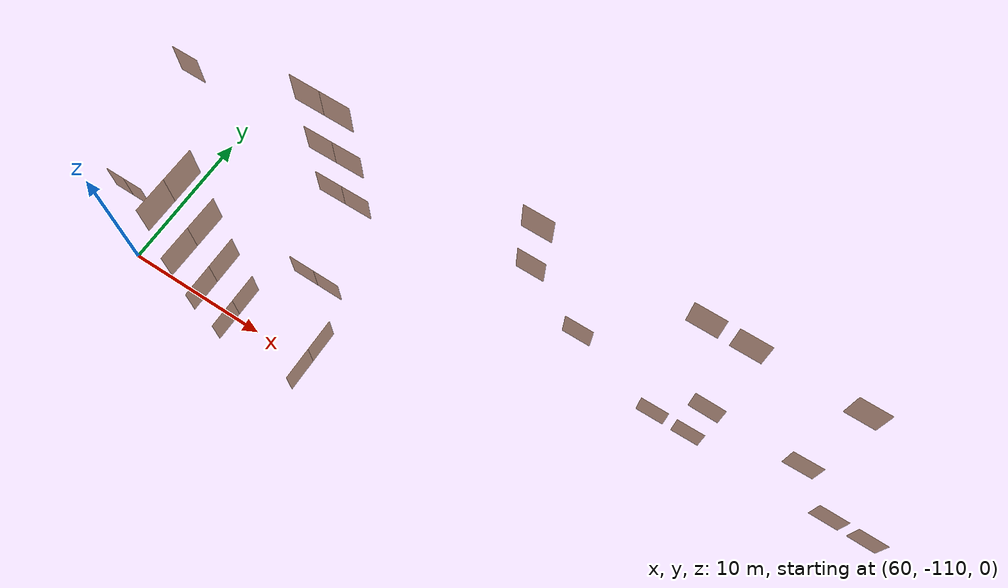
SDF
<sdf version="1.7">
 <world name="sim_world">
  <model name="puerta28">
   <pose>56.73398961875783 -106.65507427957759 0.0 0 0 0.005687130982802125</pose>
   <link name="right">
    <pose>0.7380287599410226 0 1.11 0 0 0</pose>
    <visual name="right_visual">
     <geometry><box><size>1.4660575198820451 0.03 2.2</size></box></geometry>
     <material>
      <ambient>0.5 0.25 0 0.6</ambient>
      <diffuse>0.5 0.25 0 0.6</diffuse>
      <pbr><metal><metalness>0.0</metalness></metal></pbr>
     </material>
    </visual>
    <collision name="right_collision">
     <geometry><box><size>1.4660575198820451 0.03 2.2</size></box></geometry>
     <surface><contact><collide_bitmask>0x02</collide_bitmask></contact></surface>
    </collision>
    <inertial>
     <mass>50.0</mass>
     <inertia><ixx>20.17041666666667</ixx><iyy>29.12218604834456</iyy><izz>8.95926938167789</izz></inertia>
    </inertial>
   </link>
   <joint name="right_joint" type="revolute">
    <parent>world</parent>
    <child>right</child>
    <axis><xyz>0 0 -1</xyz><limit><lower>0</lower><upper>1.57</upper></limit></axis>
    <pose>0.7380287599410226 0 0 0 0 0</pose>
   </joint>
   <link name="left">
    <pose>-0.7380287599410226 0 1.11 0 0 0</pose>
    <visual name="left_visual">
     <geometry><box><size>1.4660575198820451 0.03 2.2</size></box></geometry>
     <material>
      <ambient>0.5 0.25 0 0.6</ambient>
      <diffuse>0.5 0.25 0 0.6</diffuse>
      <pbr><metal><metalness>0.0</metalness></metal></pbr>
     </material>
    </visual>
    <collision name="left_collision">
     <geometry><box><size>1.4660575198820451 0.03 2.2</size></box></geometry>
     <surface><contact><collide_bitmask>0x02</collide_bitmask></contact></surface>
    </collision>
    <inertial>
     <mass>50.0</mass>
     <inertia><ixx>20.17041666666667</ixx><iyy>29.12218604834456</iyy><izz>8.95926938167789</izz></inertia>
    </inertial>
   </link>
   <joint name="left_joint" type="revolute">
    <parent>world</parent>
    <child>left</child>
    <axis><xyz>0 0 -1</xyz><limit><lower>-1.57</lower><upper>0</upper></limit></axis>
    <pose>-0.7380287599410226 0 0 0 0 0</pose>
   </joint>
   <plugin name="register_component" filename="libregister_component.so">
    <component name="Door">
     <v_max_door>0.5</v_max_door>
     <a_max_door>0.3</a_max_door>
     <a_nom_door>0.15</a_nom_door>
     <dx_min_door>0.01</dx_min_door>
     <f_max_door>500.0</f_max_door>
     <ros_interface>true</ros_interface>
     <door name="puerta28" type="DoubleSwingDoor" left_joint_name="left_joint" right_joint_name="right_joint"/>
    </component>
   </plugin>
  </model>
  <model name="puerta29">
   <pose>71.28122427062824 -105.17021657419008 0.0 0 0 3.1373496344820606</pose>
   <link name="right">
    <pose>0.9617949472866288 0 1.11 0 0 0</pose>
    <visual name="right_visual">
     <geometry><box><size>1.9135898945732577 0.03 2.2</size></box></geometry>
     <material>
      <ambient>0.5 0.25 0 0.6</ambient>
      <diffuse>0.5 0.25 0 0.6</diffuse>
      <pbr><metal><metalness>0.0</metalness></metal></pbr>
     </material>
    </visual>
    <collision name="right_collision">
     <geometry><box><size>1.9135898945732577 0.03 2.2</size></box></geometry>
     <surface><contact><collide_bitmask>0x02</collide_bitmask></contact></surface>
    </collision>
    <inertial>
     <mass>50.0</mass>
     <inertia><ixx>20.17041666666667</ixx><iyy>35.42427618588705</iyy><izz>15.261359519220383</izz></inertia>
    </inertial>
   </link>
   <joint name="right_joint" type="revolute">
    <parent>world</parent>
    <child>right</child>
    <axis><xyz>0 0 -1</xyz><limit><lower>0</lower><upper>1.57</upper></limit></axis>
    <pose>0.9617949472866288 0 0 0 0 0</pose>
   </joint>
   <link name="left">
    <pose>-0.9617949472866288 0 1.11 0 0 0</pose>
    <visual name="left_visual">
     <geometry><box><size>1.9135898945732577 0.03 2.2</size></box></geometry>
     <material>
      <ambient>0.5 0.25 0 0.6</ambient>
      <diffuse>0.5 0.25 0 0.6</diffuse>
      <pbr><metal><metalness>0.0</metalness></metal></pbr>
     </material>
    </visual>
    <collision name="left_collision">
     <geometry><box><size>1.9135898945732577 0.03 2.2</size></box></geometry>
     <surface><contact><collide_bitmask>0x02</collide_bitmask></contact></surface>
    </collision>
    <inertial>
     <mass>50.0</mass>
     <inertia><ixx>20.17041666666667</ixx><iyy>35.42427618588705</iyy><izz>15.261359519220383</izz></inertia>
    </inertial>
   </link>
   <joint name="left_joint" type="revolute">
    <parent>world</parent>
    <child>left</child>
    <axis><xyz>0 0 -1</xyz><limit><lower>-1.57</lower><upper>0</upper></limit></axis>
    <pose>-0.9617949472866288 0 0 0 0 0</pose>
   </joint>
   <plugin name="register_component" filename="libregister_component.so">
    <component name="Door">
     <v_max_door>0.5</v_max_door>
     <a_max_door>0.3</a_max_door>
     <a_nom_door>0.15</a_nom_door>
     <dx_min_door>0.01</dx_min_door>
     <f_max_door>500.0</f_max_door>
     <ros_interface>true</ros_interface>
     <door name="puerta29" type="DoubleSwingDoor" left_joint_name="left_joint" right_joint_name="right_joint"/>
    </component>
   </plugin>
  </model>
  <model name="puerta31">
   <pose>74.17347413638805 -109.61217111150887 0.0 0 0 -1.5725840811756284</pose>
   <link name="right">
    <pose>1.1113137501413017 0 1.11 0 0 0</pose>
    <visual name="right_visual">
     <geometry><box><size>2.2126275002826037 0.03 2.2</size></box></geometry>
     <material>
      <ambient>0.5 0.25 0 0.6</ambient>
      <diffuse>0.5 0.25 0 0.6</diffuse>
      <pbr><metal><metalness>0.0</metalness></metal></pbr>
     </material>
    </visual>
    <collision name="right_collision">
     <geometry><box><size>2.2126275002826037 0.03 2.2</size></box></geometry>
     <surface><contact><collide_bitmask>0x02</collide_bitmask></contact></surface>
    </collision>
    <inertial>
     <mass>50.0</mass>
     <inertia><ixx>20.17041666666667</ixx><iyy>40.56550189586186</iyy><izz>20.402585229195182</izz></inertia>
    </inertial>
   </link>
   <joint name="right_joint" type="revolute">
    <parent>world</parent>
    <child>right</child>
    <axis><xyz>0 0 -1</xyz><limit><lower>0</lower><upper>1.57</upper></limit></axis>
    <pose>1.1113137501413017 0 0 0 0 0</pose>
   </joint>
   <link name="left">
    <pose>-1.1113137501413017 0 1.11 0 0 0</pose>
    <visual name="left_visual">
     <geometry><box><size>2.2126275002826037 0.03 2.2</size></box></geometry>
     <material>
      <ambient>0.5 0.25 0 0.6</ambient>
      <diffuse>0.5 0.25 0 0.6</diffuse>
      <pbr><metal><metalness>0.0</metalness></metal></pbr>
     </material>
    </visual>
    <collision name="left_collision">
     <geometry><box><size>2.2126275002826037 0.03 2.2</size></box></geometry>
     <surface><contact><collide_bitmask>0x02</collide_bitmask></contact></surface>
    </collision>
    <inertial>
     <mass>50.0</mass>
     <inertia><ixx>20.17041666666667</ixx><iyy>40.56550189586186</iyy><izz>20.402585229195182</izz></inertia>
    </inertial>
   </link>
   <joint name="left_joint" type="revolute">
    <parent>world</parent>
    <child>left</child>
    <axis><xyz>0 0 -1</xyz><limit><lower>-1.57</lower><upper>0</upper></limit></axis>
    <pose>-1.1113137501413017 0 0 0 0 0</pose>
   </joint>
   <plugin name="register_component" filename="libregister_component.so">
    <component name="Door">
     <v_max_door>0.5</v_max_door>
     <a_max_door>0.3</a_max_door>
     <a_nom_door>0.15</a_nom_door>
     <dx_min_door>0.01</dx_min_door>
     <f_max_door>500.0</f_max_door>
     <ros_interface>true</ros_interface>
     <door name="puerta31" type="DoubleSwingDoor" left_joint_name="left_joint" right_joint_name="right_joint"/>
    </component>
   </plugin>
  </model>
  <model name="puerta32">
   <pose>68.2383747986397 -109.62257025237157 0.0 0 0 1.5707963267948966</pose>
   <link name="right">
    <pose>1.0190352604259871 0 1.11 0 0 0</pose>
    <visual name="right_visual">
     <geometry><box><size>2.0280705208519745 0.03 2.2</size></box></geometry>
     <material>
      <ambient>0.5 0.25 0 0.6</ambient>
      <diffuse>0.5 0.25 0 0.6</diffuse>
      <pbr><metal><metalness>0.0</metalness></metal></pbr>
     </material>
    </visual>
    <collision name="right_collision">
     <geometry><box><size>2.0280705208519745 0.03 2.2</size></box></geometry>
     <surface><contact><collide_bitmask>0x02</collide_bitmask></contact></surface>
    </collision>
    <inertial>
     <mass>50.0</mass>
     <inertia><ixx>20.17041666666667</ixx><iyy>37.30445848978667</iyy><izz>17.141541823119997</izz></inertia>
    </inertial>
   </link>
   <joint name="right_joint" type="revolute">
    <parent>world</parent>
    <child>right</child>
    <axis><xyz>0 0 -1</xyz><limit><lower>0</lower><upper>1.57</upper></limit></axis>
    <pose>1.0190352604259871 0 0 0 0 0</pose>
   </joint>
   <link name="left">
    <pose>-1.0190352604259871 0 1.11 0 0 0</pose>
    <visual name="left_visual">
     <geometry><box><size>2.0280705208519745 0.03 2.2</size></box></geometry>
     <material>
      <ambient>0.5 0.25 0 0.6</ambient>
      <diffuse>0.5 0.25 0 0.6</diffuse>
      <pbr><metal><metalness>0.0</metalness></metal></pbr>
     </material>
    </visual>
    <collision name="left_collision">
     <geometry><box><size>2.0280705208519745 0.03 2.2</size></box></geometry>
     <surface><contact><collide_bitmask>0x02</collide_bitmask></contact></surface>
    </collision>
    <inertial>
     <mass>50.0</mass>
     <inertia><ixx>20.17041666666667</ixx><iyy>37.30445848978667</iyy><izz>17.141541823119997</izz></inertia>
    </inertial>
   </link>
   <joint name="left_joint" type="revolute">
    <parent>world</parent>
    <child>left</child>
    <axis><xyz>0 0 -1</xyz><limit><lower>-1.57</lower><upper>0</upper></limit></axis>
    <pose>-1.0190352604259871 0 0 0 0 0</pose>
   </joint>
   <plugin name="register_component" filename="libregister_component.so">
    <component name="Door">
     <v_max_door>0.5</v_max_door>
     <a_max_door>0.3</a_max_door>
     <a_nom_door>0.15</a_nom_door>
     <dx_min_door>0.01</dx_min_door>
     <f_max_door>500.0</f_max_door>
     <ros_interface>true</ros_interface>
     <door name="puerta32" type="DoubleSwingDoor" left_joint_name="left_joint" right_joint_name="right_joint"/>
    </component>
   </plugin>
  </model>
  <model name="puerta60">
   <pose>93.87526400572757 -101.04925720422409 0.0 0 0 0.011459847377937605</pose>
   <link name="right">
    <pose>0 0 1.11 0 0 0</pose>
    <visual name="right_visual">
     <geometry><box><size>1.895512629021037 0.03 2.2</size></box></geometry>
     <material>
      <ambient>0.5 0.25 0 0.6</ambient>
      <diffuse>0.5 0.25 0 0.6</diffuse>
      <pbr><metal><metalness>0.0</metalness></metal></pbr>
     </material>
    </visual>
    <collision name="right_collision">
     <geometry><box><size>1.895512629021037 0.03 2.2</size></box></geometry>
     <surface><contact><collide_bitmask>0x02</collide_bitmask></contact></surface>
    </collision>
    <inertial>
     <mass>50.0</mass>
     <inertia><ixx>20.17041666666667</ixx><iyy>35.13736719490935</iyy><izz>14.97445052824268</izz></inertia>
    </inertial>
   </link>
   <joint name="right_joint" type="revolute">
    <parent>world</parent>
    <child>right</child>
    <axis><xyz>0 0 1</xyz><limit><lower>0</lower><upper>1.57</upper></limit></axis>
    <pose>0.9527563145105185 0 0 0 0 0</pose>
   </joint>
   <plugin name="register_component" filename="libregister_component.so">
    <component name="Door">
     <v_max_door>0.5</v_max_door>
     <a_max_door>0.3</a_max_door>
     <a_nom_door>0.15</a_nom_door>
     <dx_min_door>0.01</dx_min_door>
     <f_max_door>500.0</f_max_door>
     <ros_interface>true</ros_interface>
     <door name="puerta60" type="SwingDoor" left_joint_name="empty_joint" right_joint_name="right_joint"/>
    </component>
   </plugin>
  </model>
  <model name="puerta61">
   <pose>96.34669769106856 -101.05691784499732 0.0 0 0 -3.1281020419729426</pose>
   <link name="right">
    <pose>0 0 1.11 0 0 0</pose>
    <visual name="right_visual">
     <geometry><box><size>1.8740447195188525 0.03 2.2</size></box></geometry>
     <material>
      <ambient>0.5 0.25 0 0.6</ambient>
      <diffuse>0.5 0.25 0 0.6</diffuse>
      <pbr><metal><metalness>0.0</metalness></metal></pbr>
     </material>
    </visual>
    <collision name="right_collision">
     <geometry><box><size>1.8740447195188525 0.03 2.2</size></box></geometry>
     <surface><contact><collide_bitmask>0x02</collide_bitmask></contact></surface>
    </collision>
    <inertial>
     <mass>50.0</mass>
     <inertia><ixx>20.17041666666667</ixx><iyy>34.8001817114854</iyy><izz>14.63726504481873</izz></inertia>
    </inertial>
   </link>
   <joint name="right_joint" type="revolute">
    <parent>world</parent>
    <child>right</child>
    <axis><xyz>0 0 -1</xyz><limit><lower>0</lower><upper>1.57</upper></limit></axis>
    <pose>0.9420223597594263 0 0 0 0 0</pose>
   </joint>
   <plugin name="register_component" filename="libregister_component.so">
    <component name="Door">
     <v_max_door>0.5</v_max_door>
     <a_max_door>0.3</a_max_door>
     <a_nom_door>0.15</a_nom_door>
     <dx_min_door>0.01</dx_min_door>
     <f_max_door>500.0</f_max_door>
     <ros_interface>true</ros_interface>
     <door name="puerta61" type="SwingDoor" left_joint_name="empty_joint" right_joint_name="right_joint"/>
    </component>
   </plugin>
  </model>
  <model name="puerta62">
   <pose>105.78224449615178 -101.05303382853052 0.0 0 0 0.005841447498716513</pose>
   <link name="right">
    <pose>0 0 1.11 0 0 0</pose>
    <visual name="right_visual">
     <geometry><box><size>1.90812830460473 0.03 2.2</size></box></geometry>
     <material>
      <ambient>0.5 0.25 0 0.6</ambient>
      <diffuse>0.5 0.25 0 0.6</diffuse>
      <pbr><metal><metalness>0.0</metalness></metal></pbr>
     </material>
    </visual>
    <collision name="right_collision">
     <geometry><box><size>1.90812830460473 0.03 2.2</size></box></geometry>
     <surface><contact><collide_bitmask>0x02</collide_bitmask></contact></surface>
    </collision>
    <inertial>
     <mass>50.0</mass>
     <inertia><ixx>20.17041666666667</ixx><iyy>35.337306778473845</iyy><izz>15.174390111807172</izz></inertia>
    </inertial>
   </link>
   <joint name="right_joint" type="revolute">
    <parent>world</parent>
    <child>right</child>
    <axis><xyz>0 0 1</xyz><limit><lower>0</lower><upper>1.57</upper></limit></axis>
    <pose>0.959064152302365 0 0 0 0 0</pose>
   </joint>
   <plugin name="register_component" filename="libregister_component.so">
    <component name="Door">
     <v_max_door>0.5</v_max_door>
     <a_max_door>0.3</a_max_door>
     <a_nom_door>0.15</a_nom_door>
     <dx_min_door>0.01</dx_min_door>
     <f_max_door>500.0</f_max_door>
     <ros_interface>true</ros_interface>
     <door name="puerta62" type="SwingDoor" left_joint_name="empty_joint" right_joint_name="right_joint"/>
    </component>
   </plugin>
  </model>
  <model name="puerta63">
   <pose>108.25475210309648 -101.06117773402542 0.0 0 0 -3.139151727069705</pose>
   <link name="right">
    <pose>0 0 1.11 0 0 0</pose>
    <visual name="right_visual">
     <geometry><box><size>1.8671847581662644 0.03 2.2</size></box></geometry>
     <material>
      <ambient>0.5 0.25 0 0.6</ambient>
      <diffuse>0.5 0.25 0 0.6</diffuse>
      <pbr><metal><metalness>0.0</metalness></metal></pbr>
     </material>
    </visual>
    <collision name="right_collision">
     <geometry><box><size>1.8671847581662644 0.03 2.2</size></box></geometry>
     <surface><contact><collide_bitmask>0x02</collide_bitmask></contact></surface>
    </collision>
    <inertial>
     <mass>50.0</mass>
     <inertia><ixx>20.17041666666667</ixx><iyy>34.69324550470172</iyy><izz>14.530328838035048</izz></inertia>
    </inertial>
   </link>
   <joint name="right_joint" type="revolute">
    <parent>world</parent>
    <child>right</child>
    <axis><xyz>0 0 -1</xyz><limit><lower>0</lower><upper>1.57</upper></limit></axis>
    <pose>0.9385923790831322 0 0 0 0 0</pose>
   </joint>
   <plugin name="register_component" filename="libregister_component.so">
    <component name="Door">
     <v_max_door>0.5</v_max_door>
     <a_max_door>0.3</a_max_door>
     <a_nom_door>0.15</a_nom_door>
     <dx_min_door>0.01</dx_min_door>
     <f_max_door>500.0</f_max_door>
     <ros_interface>true</ros_interface>
     <door name="puerta63" type="SwingDoor" left_joint_name="empty_joint" right_joint_name="right_joint"/>
    </component>
   </plugin>
  </model>
  <model name="puerta3155">
   <pose>71.28907499378438 -101.16650575572419 5.0 0 0 -3.1338464530664876</pose>
   <link name="right">
    <pose>0.9765204641343526 0 1.11 0 0 0</pose>
    <visual name="right_visual">
     <geometry><box><size>1.9430409282687051 0.03 2.2</size></box></geometry>
     <material>
      <ambient>0.5 0.25 0 0.6</ambient>
      <diffuse>0.5 0.25 0 0.6</diffuse>
      <pbr><metal><metalness>0.0</metalness></metal></pbr>
     </material>
    </visual>
    <collision name="right_collision">
     <geometry><box><size>1.9430409282687051 0.03 2.2</size></box></geometry>
     <surface><contact><collide_bitmask>0x02</collide_bitmask></contact></surface>
    </collision>
    <inertial>
     <mass>50.0</mass>
     <inertia><ixx>20.17041666666667</ixx><iyy>35.897533537197134</iyy><izz>15.734616870530465</izz></inertia>
    </inertial>
   </link>
   <joint name="right_joint" type="revolute">
    <parent>world</parent>
    <child>right</child>
    <axis><xyz>0 0 -1</xyz><limit><lower>0</lower><upper>1.57</upper></limit></axis>
    <pose>0.9765204641343526 0 0 0 0 0</pose>
   </joint>
   <link name="left">
    <pose>-0.9765204641343526 0 1.11 0 0 0</pose>
    <visual name="left_visual">
     <geometry><box><size>1.9430409282687051 0.03 2.2</size></box></geometry>
     <material>
      <ambient>0.5 0.25 0 0.6</ambient>
      <diffuse>0.5 0.25 0 0.6</diffuse>
      <pbr><metal><metalness>0.0</metalness></metal></pbr>
     </material>
    </visual>
    <collision name="left_collision">
     <geometry><box><size>1.9430409282687051 0.03 2.2</size></box></geometry>
     <surface><contact><collide_bitmask>0x02</collide_bitmask></contact></surface>
    </collision>
    <inertial>
     <mass>50.0</mass>
     <inertia><ixx>20.17041666666667</ixx><iyy>35.897533537197134</iyy><izz>15.734616870530465</izz></inertia>
    </inertial>
   </link>
   <joint name="left_joint" type="revolute">
    <parent>world</parent>
    <child>left</child>
    <axis><xyz>0 0 -1</xyz><limit><lower>-1.57</lower><upper>0</upper></limit></axis>
    <pose>-0.9765204641343526 0 0 0 0 0</pose>
   </joint>
   <plugin name="register_component" filename="libregister_component.so">
    <component name="Door">
     <v_max_door>0.5</v_max_door>
     <a_max_door>0.3</a_max_door>
     <a_nom_door>0.15</a_nom_door>
     <dx_min_door>0.01</dx_min_door>
     <f_max_door>500.0</f_max_door>
     <ros_interface>true</ros_interface>
     <door name="puerta3155" type="DoubleSwingDoor" left_joint_name="left_joint" right_joint_name="right_joint"/>
    </component>
   </plugin>
  </model>
  <model name="puerta3156">
   <pose>67.93146180863909 -109.72130603549945 5.0 0 0 -1.570785072317717</pose>
   <link name="right">
    <pose>1.0796325979022996 0 1.11 0 0 0</pose>
    <visual name="right_visual">
     <geometry><box><size>2.1492651958045994 0.03 2.2</size></box></geometry>
     <material>
      <ambient>0.5 0.25 0 0.6</ambient>
      <diffuse>0.5 0.25 0 0.6</diffuse>
      <pbr><metal><metalness>0.0</metalness></metal></pbr>
     </material>
    </visual>
    <collision name="right_collision">
     <geometry><box><size>2.1492651958045994 0.03 2.2</size></box></geometry>
     <surface><contact><collide_bitmask>0x02</collide_bitmask></contact></surface>
    </collision>
    <inertial>
     <mass>50.0</mass>
     <inertia><ixx>20.17041666666667</ixx><iyy>39.41392034123744</iyy><izz>19.251003674570764</izz></inertia>
    </inertial>
   </link>
   <joint name="right_joint" type="revolute">
    <parent>world</parent>
    <child>right</child>
    <axis><xyz>0 0 -1</xyz><limit><lower>0</lower><upper>1.57</upper></limit></axis>
    <pose>1.0796325979022996 0 0 0 0 0</pose>
   </joint>
   <link name="left">
    <pose>-1.0796325979022996 0 1.11 0 0 0</pose>
    <visual name="left_visual">
     <geometry><box><size>2.1492651958045994 0.03 2.2</size></box></geometry>
     <material>
      <ambient>0.5 0.25 0 0.6</ambient>
      <diffuse>0.5 0.25 0 0.6</diffuse>
      <pbr><metal><metalness>0.0</metalness></metal></pbr>
     </material>
    </visual>
    <collision name="left_collision">
     <geometry><box><size>2.1492651958045994 0.03 2.2</size></box></geometry>
     <surface><contact><collide_bitmask>0x02</collide_bitmask></contact></surface>
    </collision>
    <inertial>
     <mass>50.0</mass>
     <inertia><ixx>20.17041666666667</ixx><iyy>39.41392034123744</iyy><izz>19.251003674570764</izz></inertia>
    </inertial>
   </link>
   <joint name="left_joint" type="revolute">
    <parent>world</parent>
    <child>left</child>
    <axis><xyz>0 0 -1</xyz><limit><lower>-1.57</lower><upper>0</upper></limit></axis>
    <pose>-1.0796325979022996 0 0 0 0 0</pose>
   </joint>
   <plugin name="register_component" filename="libregister_component.so">
    <component name="Door">
     <v_max_door>0.5</v_max_door>
     <a_max_door>0.3</a_max_door>
     <a_nom_door>0.15</a_nom_door>
     <dx_min_door>0.01</dx_min_door>
     <f_max_door>500.0</f_max_door>
     <ros_interface>true</ros_interface>
     <door name="puerta3156" type="DoubleSwingDoor" left_joint_name="left_joint" right_joint_name="right_joint"/>
    </component>
   </plugin>
  </model>
  <model name="puerta3168">
   <pose>87.92947242073606 -100.96812600410848 5.0 0 0 0.005436156051112453</pose>
   <link name="right">
    <pose>0 0 1.11 0 0 0</pose>
    <visual name="right_visual">
     <geometry><box><size>1.8706456718837035 0.03 2.2</size></box></geometry>
     <material>
      <ambient>0.5 0.25 0 0.6</ambient>
      <diffuse>0.5 0.25 0 0.6</diffuse>
      <pbr><metal><metalness>0.0</metalness></metal></pbr>
     </material>
    </visual>
    <collision name="right_collision">
     <geometry><box><size>1.8706456718837035 0.03 2.2</size></box></geometry>
     <surface><contact><collide_bitmask>0x02</collide_bitmask></contact></surface>
    </collision>
    <inertial>
     <mass>50.0</mass>
     <inertia><ixx>20.17041666666667</ixx><iyy>34.747146790571804</iyy><izz>14.584230123905137</izz></inertia>
    </inertial>
   </link>
   <joint name="right_joint" type="revolute">
    <parent>world</parent>
    <child>right</child>
    <axis><xyz>0 0 1</xyz><limit><lower>0</lower><upper>1.57</upper></limit></axis>
    <pose>0.9403228359418517 0 0 0 0 0</pose>
   </joint>
   <plugin name="register_component" filename="libregister_component.so">
    <component name="Door">
     <v_max_door>0.5</v_max_door>
     <a_max_door>0.3</a_max_door>
     <a_nom_door>0.15</a_nom_door>
     <dx_min_door>0.01</dx_min_door>
     <f_max_door>500.0</f_max_door>
     <ros_interface>true</ros_interface>
     <door name="puerta3168" type="SwingDoor" left_joint_name="empty_joint" right_joint_name="right_joint"/>
    </component>
   </plugin>
  </model>
  <model name="puerta3170">
   <pose>96.4053194951808 -100.96971309210329 5.0 0 0 3.1324225954408864</pose>
   <link name="right">
    <pose>0 0 1.11 0 0 0</pose>
    <visual name="right_visual">
     <geometry><box><size>1.9356007428188877 0.03 2.2</size></box></geometry>
     <material>
      <ambient>0.5 0.25 0 0.6</ambient>
      <diffuse>0.5 0.25 0 0.6</diffuse>
      <pbr><metal><metalness>0.0</metalness></metal></pbr>
     </material>
    </visual>
    <collision name="right_collision">
     <geometry><box><size>1.9356007428188877 0.03 2.2</size></box></geometry>
     <surface><contact><collide_bitmask>0x02</collide_bitmask></contact></surface>
    </collision>
    <inertial>
     <mass>50.0</mass>
     <inertia><ixx>20.17041666666667</ixx><iyy>35.777292648337635</iyy><izz>15.614375981670959</izz></inertia>
    </inertial>
   </link>
   <joint name="right_joint" type="revolute">
    <parent>world</parent>
    <child>right</child>
    <axis><xyz>0 0 -1</xyz><limit><lower>0</lower><upper>1.57</upper></limit></axis>
    <pose>0.9728003714094439 0 0 0 0 0</pose>
   </joint>
   <plugin name="register_component" filename="libregister_component.so">
    <component name="Door">
     <v_max_door>0.5</v_max_door>
     <a_max_door>0.3</a_max_door>
     <a_nom_door>0.15</a_nom_door>
     <dx_min_door>0.01</dx_min_door>
     <f_max_door>500.0</f_max_door>
     <ros_interface>true</ros_interface>
     <door name="puerta3170" type="SwingDoor" left_joint_name="empty_joint" right_joint_name="right_joint"/>
    </component>
   </plugin>
  </model>
  <model name="puerta3171">
   <pose>102.392189119612 -100.96928773871309 5.0 0 0 -3.118198626097937</pose>
   <link name="right">
    <pose>0 0 1.11 0 0 0</pose>
    <visual name="right_visual">
     <geometry><box><size>1.8747487626795738 0.03 2.2</size></box></geometry>
     <material>
      <ambient>0.5 0.25 0 0.6</ambient>
      <diffuse>0.5 0.25 0 0.6</diffuse>
      <pbr><metal><metalness>0.0</metalness></metal></pbr>
     </material>
    </visual>
    <collision name="right_collision">
     <geometry><box><size>1.8747487626795738 0.03 2.2</size></box></geometry>
     <surface><contact><collide_bitmask>0x02</collide_bitmask></contact></surface>
    </collision>
    <inertial>
     <mass>50.0</mass>
     <inertia><ixx>20.17041666666667</ixx><iyy>34.8111788465358</iyy><izz>14.648262179869137</izz></inertia>
    </inertial>
   </link>
   <joint name="right_joint" type="revolute">
    <parent>world</parent>
    <child>right</child>
    <axis><xyz>0 0 -1</xyz><limit><lower>0</lower><upper>1.57</upper></limit></axis>
    <pose>0.9423743813397869 0 0 0 0 0</pose>
   </joint>
   <plugin name="register_component" filename="libregister_component.so">
    <component name="Door">
     <v_max_door>0.5</v_max_door>
     <a_max_door>0.3</a_max_door>
     <a_nom_door>0.15</a_nom_door>
     <dx_min_door>0.01</dx_min_door>
     <f_max_door>500.0</f_max_door>
     <ros_interface>true</ros_interface>
     <door name="puerta3171" type="SwingDoor" left_joint_name="empty_joint" right_joint_name="right_joint"/>
    </component>
   </plugin>
  </model>
  <model name="puerta5250">
   <pose>71.29893269596319 -101.12459903673576 10.0 0 0 -3.1338170542214447</pose>
   <link name="right">
    <pose>0.9681715667783692 0 1.11 0 0 0</pose>
    <visual name="right_visual">
     <geometry><box><size>1.9263431335567385 0.03 2.2</size></box></geometry>
     <material>
      <ambient>0.5 0.25 0 0.6</ambient>
      <diffuse>0.5 0.25 0 0.6</diffuse>
      <pbr><metal><metalness>0.0</metalness></metal></pbr>
     </material>
    </visual>
    <collision name="right_collision">
     <geometry><box><size>1.9263431335567385 0.03 2.2</size></box></geometry>
     <surface><contact><collide_bitmask>0x02</collide_bitmask></contact></surface>
    </collision>
    <inertial>
     <mass>50.0</mass>
     <inertia><ixx>20.17041666666667</ixx><iyy>35.62832445083832</iyy><izz>15.465407784171646</izz></inertia>
    </inertial>
   </link>
   <joint name="right_joint" type="revolute">
    <parent>world</parent>
    <child>right</child>
    <axis><xyz>0 0 -1</xyz><limit><lower>0</lower><upper>1.57</upper></limit></axis>
    <pose>0.9681715667783692 0 0 0 0 0</pose>
   </joint>
   <link name="left">
    <pose>-0.9681715667783692 0 1.11 0 0 0</pose>
    <visual name="left_visual">
     <geometry><box><size>1.9263431335567385 0.03 2.2</size></box></geometry>
     <material>
      <ambient>0.5 0.25 0 0.6</ambient>
      <diffuse>0.5 0.25 0 0.6</diffuse>
      <pbr><metal><metalness>0.0</metalness></metal></pbr>
     </material>
    </visual>
    <collision name="left_collision">
     <geometry><box><size>1.9263431335567385 0.03 2.2</size></box></geometry>
     <surface><contact><collide_bitmask>0x02</collide_bitmask></contact></surface>
    </collision>
    <inertial>
     <mass>50.0</mass>
     <inertia><ixx>20.17041666666667</ixx><iyy>35.62832445083832</iyy><izz>15.465407784171646</izz></inertia>
    </inertial>
   </link>
   <joint name="left_joint" type="revolute">
    <parent>world</parent>
    <child>left</child>
    <axis><xyz>0 0 -1</xyz><limit><lower>-1.57</lower><upper>0</upper></limit></axis>
    <pose>-0.9681715667783692 0 0 0 0 0</pose>
   </joint>
   <plugin name="register_component" filename="libregister_component.so">
    <component name="Door">
     <v_max_door>0.5</v_max_door>
     <a_max_door>0.3</a_max_door>
     <a_nom_door>0.15</a_nom_door>
     <dx_min_door>0.01</dx_min_door>
     <f_max_door>500.0</f_max_door>
     <ros_interface>true</ros_interface>
     <door name="puerta5250" type="DoubleSwingDoor" left_joint_name="left_joint" right_joint_name="right_joint"/>
    </component>
   </plugin>
  </model>
  <model name="puerta5251">
   <pose>67.95911464983936 -109.7259664662755 10.0 0 0 -1.584698572405045</pose>
   <link name="right">
    <pose>1.0917748478085156 0 1.11 0 0 0</pose>
    <visual name="right_visual">
     <geometry><box><size>2.1735496956170315 0.03 2.2</size></box></geometry>
     <material>
      <ambient>0.5 0.25 0 0.6</ambient>
      <diffuse>0.5 0.25 0 0.6</diffuse>
      <pbr><metal><metalness>0.0</metalness></metal></pbr>
     </material>
    </visual>
    <collision name="right_collision">
     <geometry><box><size>2.1735496956170315 0.03 2.2</size></box></geometry>
     <surface><contact><collide_bitmask>0x02</collide_bitmask></contact></surface>
    </collision>
    <inertial>
     <mass>50.0</mass>
     <inertia><ixx>20.17041666666667</ixx><iyy>39.851326163820374</iyy><izz>19.688409497153707</izz></inertia>
    </inertial>
   </link>
   <joint name="right_joint" type="revolute">
    <parent>world</parent>
    <child>right</child>
    <axis><xyz>0 0 -1</xyz><limit><lower>0</lower><upper>1.57</upper></limit></axis>
    <pose>1.0917748478085156 0 0 0 0 0</pose>
   </joint>
   <link name="left">
    <pose>-1.0917748478085156 0 1.11 0 0 0</pose>
    <visual name="left_visual">
     <geometry><box><size>2.1735496956170315 0.03 2.2</size></box></geometry>
     <material>
      <ambient>0.5 0.25 0 0.6</ambient>
      <diffuse>0.5 0.25 0 0.6</diffuse>
      <pbr><metal><metalness>0.0</metalness></metal></pbr>
     </material>
    </visual>
    <collision name="left_collision">
     <geometry><box><size>2.1735496956170315 0.03 2.2</size></box></geometry>
     <surface><contact><collide_bitmask>0x02</collide_bitmask></contact></surface>
    </collision>
    <inertial>
     <mass>50.0</mass>
     <inertia><ixx>20.17041666666667</ixx><iyy>39.851326163820374</iyy><izz>19.688409497153707</izz></inertia>
    </inertial>
   </link>
   <joint name="left_joint" type="revolute">
    <parent>world</parent>
    <child>left</child>
    <axis><xyz>0 0 -1</xyz><limit><lower>-1.57</lower><upper>0</upper></limit></axis>
    <pose>-1.0917748478085156 0 0 0 0 0</pose>
   </joint>
   <plugin name="register_component" filename="libregister_component.so">
    <component name="Door">
     <v_max_door>0.5</v_max_door>
     <a_max_door>0.3</a_max_door>
     <a_nom_door>0.15</a_nom_door>
     <dx_min_door>0.01</dx_min_door>
     <f_max_door>500.0</f_max_door>
     <ros_interface>true</ros_interface>
     <door name="puerta5251" type="DoubleSwingDoor" left_joint_name="left_joint" right_joint_name="right_joint"/>
    </component>
   </plugin>
  </model>
  <model name="puerta5263">
   <pose>60.56899715477791 -100.96795692619867 10.0 0 0 3.1415879627127317</pose>
   <link name="right">
    <pose>0 0 1.11 0 0 0</pose>
    <visual name="right_visual">
     <geometry><box><size>1.7907338754035538 0.03 2.2</size></box></geometry>
     <material>
      <ambient>0.5 0.25 0 0.6</ambient>
      <diffuse>0.5 0.25 0 0.6</diffuse>
      <pbr><metal><metalness>0.0</metalness></metal></pbr>
     </material>
    </visual>
    <collision name="right_collision">
     <geometry><box><size>1.7907338754035538 0.03 2.2</size></box></geometry>
     <surface><contact><collide_bitmask>0x02</collide_bitmask></contact></surface>
    </collision>
    <inertial>
     <mass>50.0</mass>
     <inertia><ixx>20.17041666666667</ixx><iyy>33.52803255215763</iyy><izz>13.365115885490962</izz></inertia>
    </inertial>
   </link>
   <joint name="right_joint" type="revolute">
    <parent>world</parent>
    <child>right</child>
    <axis><xyz>0 0 -1</xyz><limit><lower>0</lower><upper>1.57</upper></limit></axis>
    <pose>0.9003669377017769 0 0 0 0 0</pose>
   </joint>
   <plugin name="register_component" filename="libregister_component.so">
    <component name="Door">
     <v_max_door>0.5</v_max_door>
     <a_max_door>0.3</a_max_door>
     <a_nom_door>0.15</a_nom_door>
     <dx_min_door>0.01</dx_min_door>
     <f_max_door>500.0</f_max_door>
     <ros_interface>true</ros_interface>
     <door name="puerta5263" type="SwingDoor" left_joint_name="empty_joint" right_joint_name="right_joint"/>
    </component>
   </plugin>
  </model>
  <model name="puerta5265">
   <pose>84.3995746939151 -100.98016378126353 10.0 0 0 3.141587962712718</pose>
   <link name="right">
    <pose>0 0 1.11 0 0 0</pose>
    <visual name="right_visual">
     <geometry><box><size>1.7832191877155692 0.03 2.2</size></box></geometry>
     <material>
      <ambient>0.5 0.25 0 0.6</ambient>
      <diffuse>0.5 0.25 0 0.6</diffuse>
      <pbr><metal><metalness>0.0</metalness></metal></pbr>
     </material>
    </visual>
    <collision name="right_collision">
     <geometry><box><size>1.7832191877155692 0.03 2.2</size></box></geometry>
     <surface><contact><collide_bitmask>0x02</collide_bitmask></contact></surface>
    </collision>
    <inertial>
     <mass>50.0</mass>
     <inertia><ixx>20.17041666666667</ixx><iyy>33.41612779765406</iyy><izz>13.253211130987394</izz></inertia>
    </inertial>
   </link>
   <joint name="right_joint" type="revolute">
    <parent>world</parent>
    <child>right</child>
    <axis><xyz>0 0 -1</xyz><limit><lower>0</lower><upper>1.57</upper></limit></axis>
    <pose>0.8966095938577846 0 0 0 0 0</pose>
   </joint>
   <plugin name="register_component" filename="libregister_component.so">
    <component name="Door">
     <v_max_door>0.5</v_max_door>
     <a_max_door>0.3</a_max_door>
     <a_nom_door>0.15</a_nom_door>
     <dx_min_door>0.01</dx_min_door>
     <f_max_door>500.0</f_max_door>
     <ros_interface>true</ros_interface>
     <door name="puerta5265" type="SwingDoor" left_joint_name="empty_joint" right_joint_name="right_joint"/>
    </component>
   </plugin>
  </model>
  <model name="puerta7187">
   <pose>71.28630375035644 -101.18359598491324 15.0 0 0 3.1396061942731075</pose>
   <link name="right">
    <pose>0.9630543179236221 0 1.11 0 0 0</pose>
    <visual name="right_visual">
     <geometry><box><size>1.9161086358472441 0.03 2.2</size></box></geometry>
     <material>
      <ambient>0.5 0.25 0 0.6</ambient>
      <diffuse>0.5 0.25 0 0.6</diffuse>
      <pbr><metal><metalness>0.0</metalness></metal></pbr>
     </material>
    </visual>
    <collision name="right_collision">
     <geometry><box><size>1.9161086358472441 0.03 2.2</size></box></geometry>
     <surface><contact><collide_bitmask>0x02</collide_bitmask></contact></surface>
    </collision>
    <inertial>
     <mass>50.0</mass>
     <inertia><ixx>20.17041666666667</ixx><iyy>35.46446793486828</iyy><izz>15.301551268201612</izz></inertia>
    </inertial>
   </link>
   <joint name="right_joint" type="revolute">
    <parent>world</parent>
    <child>right</child>
    <axis><xyz>0 0 -1</xyz><limit><lower>0</lower><upper>1.57</upper></limit></axis>
    <pose>0.9630543179236221 0 0 0 0 0</pose>
   </joint>
   <link name="left">
    <pose>-0.9630543179236221 0 1.11 0 0 0</pose>
    <visual name="left_visual">
     <geometry><box><size>1.9161086358472441 0.03 2.2</size></box></geometry>
     <material>
      <ambient>0.5 0.25 0 0.6</ambient>
      <diffuse>0.5 0.25 0 0.6</diffuse>
      <pbr><metal><metalness>0.0</metalness></metal></pbr>
     </material>
    </visual>
    <collision name="left_collision">
     <geometry><box><size>1.9161086358472441 0.03 2.2</size></box></geometry>
     <surface><contact><collide_bitmask>0x02</collide_bitmask></contact></surface>
    </collision>
    <inertial>
     <mass>50.0</mass>
     <inertia><ixx>20.17041666666667</ixx><iyy>35.46446793486828</iyy><izz>15.301551268201612</izz></inertia>
    </inertial>
   </link>
   <joint name="left_joint" type="revolute">
    <parent>world</parent>
    <child>left</child>
    <axis><xyz>0 0 -1</xyz><limit><lower>-1.57</lower><upper>0</upper></limit></axis>
    <pose>-0.9630543179236221 0 0 0 0 0</pose>
   </joint>
   <plugin name="register_component" filename="libregister_component.so">
    <component name="Door">
     <v_max_door>0.5</v_max_door>
     <a_max_door>0.3</a_max_door>
     <a_nom_door>0.15</a_nom_door>
     <dx_min_door>0.01</dx_min_door>
     <f_max_door>500.0</f_max_door>
     <ros_interface>true</ros_interface>
     <door name="puerta7187" type="DoubleSwingDoor" left_joint_name="left_joint" right_joint_name="right_joint"/>
    </component>
   </plugin>
  </model>
  <model name="puerta7188">
   <pose>67.93899669692587 -109.5794207605103 15.0 0 0 -1.5799202079966024</pose>
   <link name="right">
    <pose>1.025069249001763 0 1.11 0 0 0</pose>
    <visual name="right_visual">
     <geometry><box><size>2.040138498003526 0.03 2.2</size></box></geometry>
     <material>
      <ambient>0.5 0.25 0 0.6</ambient>
      <diffuse>0.5 0.25 0 0.6</diffuse>
      <pbr><metal><metalness>0.0</metalness></metal></pbr>
     </material>
    </visual>
    <collision name="right_collision">
     <geometry><box><size>2.040138498003526 0.03 2.2</size></box></geometry>
     <surface><contact><collide_bitmask>0x02</collide_bitmask></contact></surface>
    </collision>
    <inertial>
     <mass>50.0</mass>
     <inertia><ixx>20.17041666666667</ixx><iyy>37.50902121265035</iyy><izz>17.346104545983682</izz></inertia>
    </inertial>
   </link>
   <joint name="right_joint" type="revolute">
    <parent>world</parent>
    <child>right</child>
    <axis><xyz>0 0 -1</xyz><limit><lower>0</lower><upper>1.57</upper></limit></axis>
    <pose>1.025069249001763 0 0 0 0 0</pose>
   </joint>
   <link name="left">
    <pose>-1.025069249001763 0 1.11 0 0 0</pose>
    <visual name="left_visual">
     <geometry><box><size>2.040138498003526 0.03 2.2</size></box></geometry>
     <material>
      <ambient>0.5 0.25 0 0.6</ambient>
      <diffuse>0.5 0.25 0 0.6</diffuse>
      <pbr><metal><metalness>0.0</metalness></metal></pbr>
     </material>
    </visual>
    <collision name="left_collision">
     <geometry><box><size>2.040138498003526 0.03 2.2</size></box></geometry>
     <surface><contact><collide_bitmask>0x02</collide_bitmask></contact></surface>
    </collision>
    <inertial>
     <mass>50.0</mass>
     <inertia><ixx>20.17041666666667</ixx><iyy>37.50902121265035</iyy><izz>17.346104545983682</izz></inertia>
    </inertial>
   </link>
   <joint name="left_joint" type="revolute">
    <parent>world</parent>
    <child>left</child>
    <axis><xyz>0 0 -1</xyz><limit><lower>-1.57</lower><upper>0</upper></limit></axis>
    <pose>-1.025069249001763 0 0 0 0 0</pose>
   </joint>
   <plugin name="register_component" filename="libregister_component.so">
    <component name="Door">
     <v_max_door>0.5</v_max_door>
     <a_max_door>0.3</a_max_door>
     <a_nom_door>0.15</a_nom_door>
     <dx_min_door>0.01</dx_min_door>
     <f_max_door>500.0</f_max_door>
     <ros_interface>true</ros_interface>
     <door name="puerta7188" type="DoubleSwingDoor" left_joint_name="left_joint" right_joint_name="right_joint"/>
    </component>
   </plugin>
  </model>
  <model name="puerta7202">
   <pose>84.48570695998495 -100.99225252385062 15.0 0 0 3.141552672686582</pose>
   <link name="right">
    <pose>0 0 1.11 0 0 0</pose>
    <visual name="right_visual">
     <geometry><box><size>1.8299101157872175 0.03 2.2</size></box></geometry>
     <material>
      <ambient>0.5 0.25 0 0.6</ambient>
      <diffuse>0.5 0.25 0 0.6</diffuse>
      <pbr><metal><metalness>0.0</metalness></metal></pbr>
     </material>
    </visual>
    <collision name="right_collision">
     <geometry><box><size>1.8299101157872175 0.03 2.2</size></box></geometry>
     <surface><contact><collide_bitmask>0x02</collide_bitmask></contact></surface>
    </collision>
    <inertial>
     <mass>50.0</mass>
     <inertia><ixx>20.17041666666667</ixx><iyy>34.119045966084954</iyy><izz>13.956129299418285</izz></inertia>
    </inertial>
   </link>
   <joint name="right_joint" type="revolute">
    <parent>world</parent>
    <child>right</child>
    <axis><xyz>0 0 -1</xyz><limit><lower>0</lower><upper>1.57</upper></limit></axis>
    <pose>0.9199550578936088 0 0 0 0 0</pose>
   </joint>
   <plugin name="register_component" filename="libregister_component.so">
    <component name="Door">
     <v_max_door>0.5</v_max_door>
     <a_max_door>0.3</a_max_door>
     <a_nom_door>0.15</a_nom_door>
     <dx_min_door>0.01</dx_min_door>
     <f_max_door>500.0</f_max_door>
     <ros_interface>true</ros_interface>
     <door name="puerta7202" type="SwingDoor" left_joint_name="empty_joint" right_joint_name="right_joint"/>
    </component>
   </plugin>
  </model>
  <model name="puerta7203">
   <pose>93.95249722557834 -100.97875574270583 15.0 0 0 -3.99809032085887e-05</pose>
   <link name="right">
    <pose>0 0 1.11 0 0 0</pose>
    <visual name="right_visual">
     <geometry><box><size>1.7747594136057852 0.03 2.2</size></box></geometry>
     <material>
      <ambient>0.5 0.25 0 0.6</ambient>
      <diffuse>0.5 0.25 0 0.6</diffuse>
      <pbr><metal><metalness>0.0</metalness></metal></pbr>
     </material>
    </visual>
    <collision name="right_collision">
     <geometry><box><size>1.7747594136057852 0.03 2.2</size></box></geometry>
     <surface><contact><collide_bitmask>0x02</collide_bitmask></contact></surface>
    </collision>
    <inertial>
     <mass>50.0</mass>
     <inertia><ixx>20.17041666666667</ixx><iyy>33.2907124007598</iyy><izz>13.127795734093127</izz></inertia>
    </inertial>
   </link>
   <joint name="right_joint" type="revolute">
    <parent>world</parent>
    <child>right</child>
    <axis><xyz>0 0 1</xyz><limit><lower>0</lower><upper>1.57</upper></limit></axis>
    <pose>0.8923797068028926 0 0 0 0 0</pose>
   </joint>
   <plugin name="register_component" filename="libregister_component.so">
    <component name="Door">
     <v_max_door>0.5</v_max_door>
     <a_max_door>0.3</a_max_door>
     <a_nom_door>0.15</a_nom_door>
     <dx_min_door>0.01</dx_min_door>
     <f_max_door>500.0</f_max_door>
     <ros_interface>true</ros_interface>
     <door name="puerta7203" type="SwingDoor" left_joint_name="empty_joint" right_joint_name="right_joint"/>
    </component>
   </plugin>
  </model>
  <model name="puerta7204">
   <pose>96.3435108630191 -100.99272660956103 15.0 0 0 3.1415526726865766</pose>
   <link name="right">
    <pose>0 0 1.11 0 0 0</pose>
    <visual name="right_visual">
     <geometry><box><size>1.7384244211266655 0.03 2.2</size></box></geometry>
     <material>
      <ambient>0.5 0.25 0 0.6</ambient>
      <diffuse>0.5 0.25 0 0.6</diffuse>
      <pbr><metal><metalness>0.0</metalness></metal></pbr>
     </material>
    </visual>
    <collision name="right_collision">
     <geometry><box><size>1.7384244211266655 0.03 2.2</size></box></geometry>
     <surface><contact><collide_bitmask>0x02</collide_bitmask></contact></surface>
    </collision>
    <inertial>
     <mass>50.0</mass>
     <inertia><ixx>20.17041666666667</ixx><iyy>32.75883111653993</iyy><izz>12.595914449873261</izz></inertia>
    </inertial>
   </link>
   <joint name="right_joint" type="revolute">
    <parent>world</parent>
    <child>right</child>
    <axis><xyz>0 0 -1</xyz><limit><lower>0</lower><upper>1.57</upper></limit></axis>
    <pose>0.8742122105633328 0 0 0 0 0</pose>
   </joint>
   <plugin name="register_component" filename="libregister_component.so">
    <component name="Door">
     <v_max_door>0.5</v_max_door>
     <a_max_door>0.3</a_max_door>
     <a_nom_door>0.15</a_nom_door>
     <dx_min_door>0.01</dx_min_door>
     <f_max_door>500.0</f_max_door>
     <ros_interface>true</ros_interface>
     <door name="puerta7204" type="SwingDoor" left_joint_name="empty_joint" right_joint_name="right_joint"/>
    </component>
   </plugin>
  </model>
  <model name="puerta7205">
   <pose>102.36134904722832 -101.00312839218584 15.0 0 0 3.1415526726865908</pose>
   <link name="right">
    <pose>0 0 1.11 0 0 0</pose>
    <visual name="right_visual">
     <geometry><box><size>1.67745731706333 0.03 2.2</size></box></geometry>
     <material>
      <ambient>0.5 0.25 0 0.6</ambient>
      <diffuse>0.5 0.25 0 0.6</diffuse>
      <pbr><metal><metalness>0.0</metalness></metal></pbr>
     </material>
    </visual>
    <collision name="right_collision">
     <geometry><box><size>1.67745731706333 0.03 2.2</size></box></geometry>
     <surface><contact><collide_bitmask>0x02</collide_bitmask></contact></surface>
    </collision>
    <inertial>
     <mass>50.0</mass>
     <inertia><ixx>20.17041666666667</ixx><iyy>31.89109604403878</iyy><izz>11.728179377372106</izz></inertia>
    </inertial>
   </link>
   <joint name="right_joint" type="revolute">
    <parent>world</parent>
    <child>right</child>
    <axis><xyz>0 0 -1</xyz><limit><lower>0</lower><upper>1.57</upper></limit></axis>
    <pose>0.843728658531665 0 0 0 0 0</pose>
   </joint>
   <plugin name="register_component" filename="libregister_component.so">
    <component name="Door">
     <v_max_door>0.5</v_max_door>
     <a_max_door>0.3</a_max_door>
     <a_nom_door>0.15</a_nom_door>
     <dx_min_door>0.01</dx_min_door>
     <f_max_door>500.0</f_max_door>
     <ros_interface>true</ros_interface>
     <door name="puerta7205" type="SwingDoor" left_joint_name="empty_joint" right_joint_name="right_joint"/>
    </component>
   </plugin>
  </model>
 </world>
</sdf>
